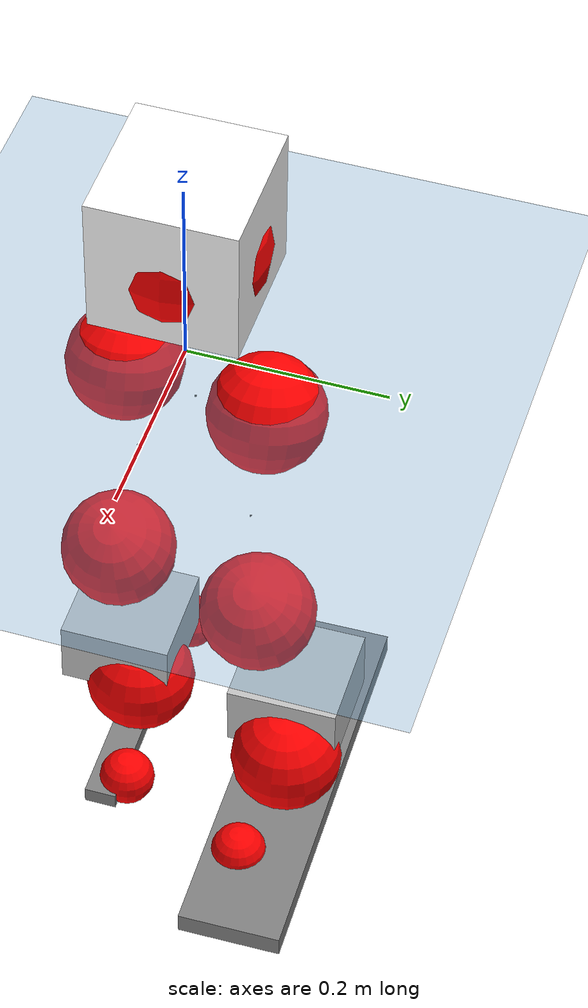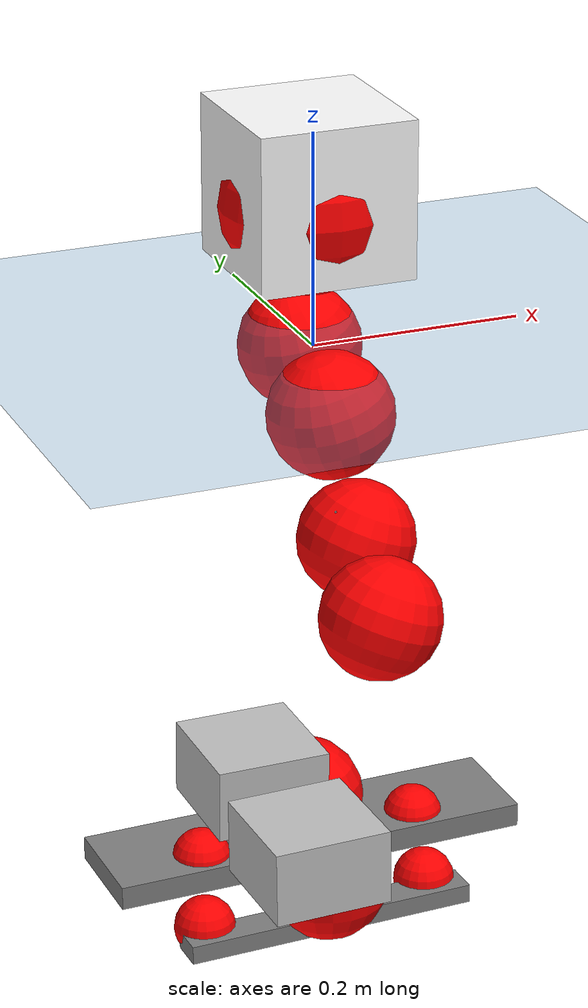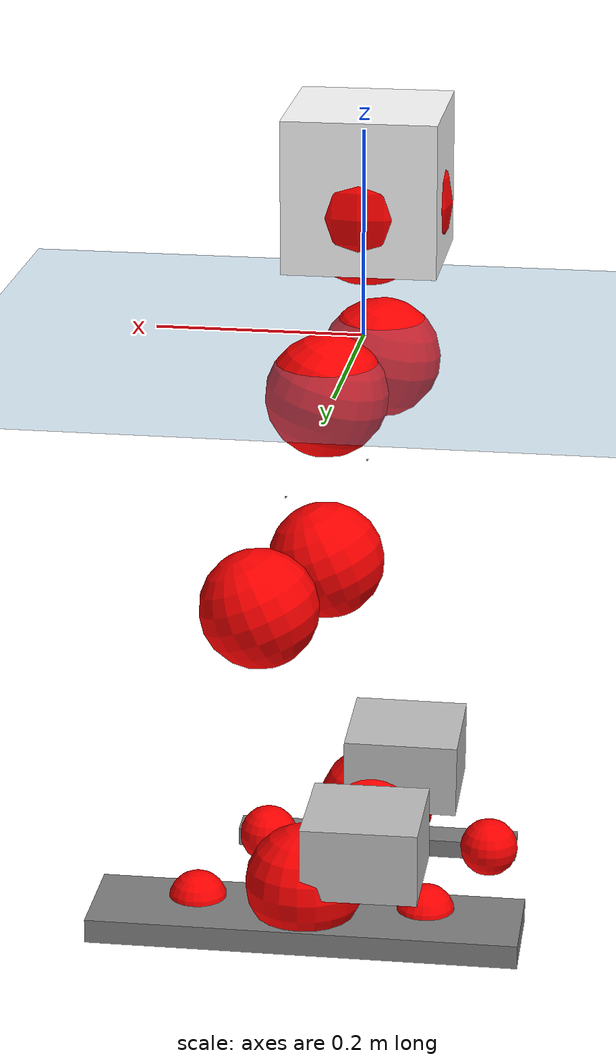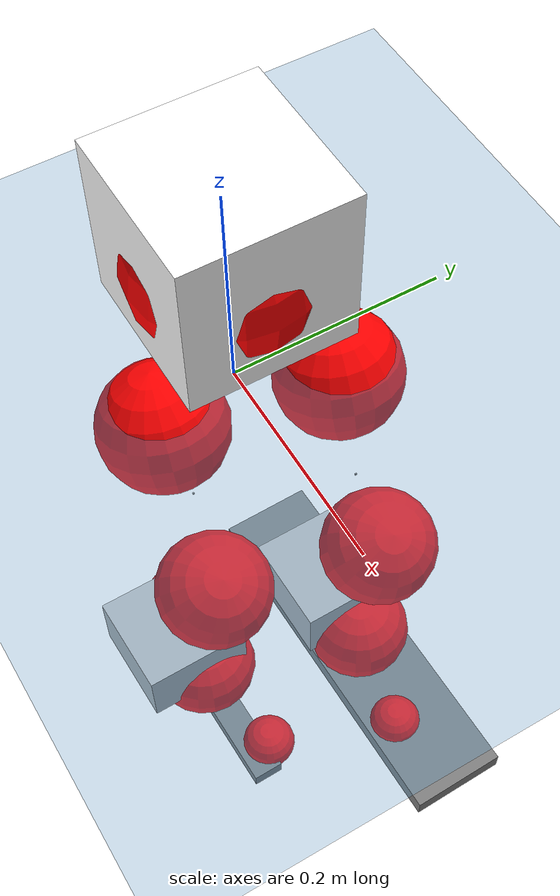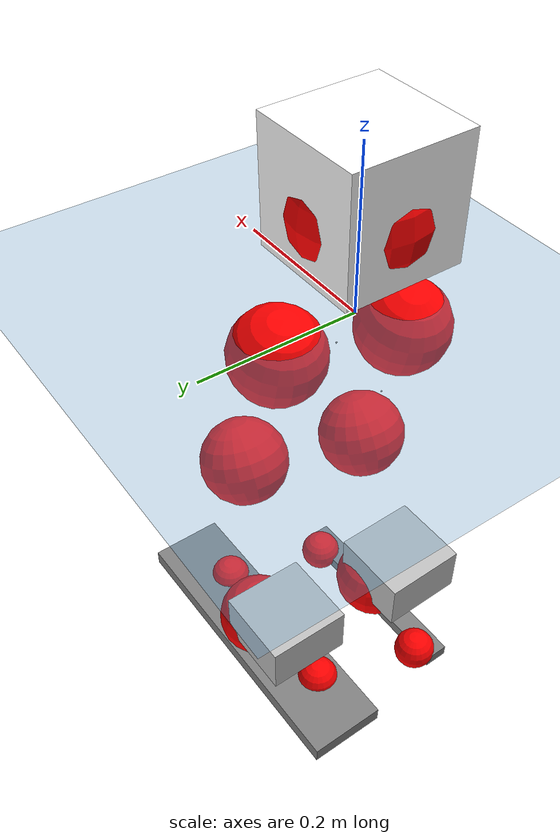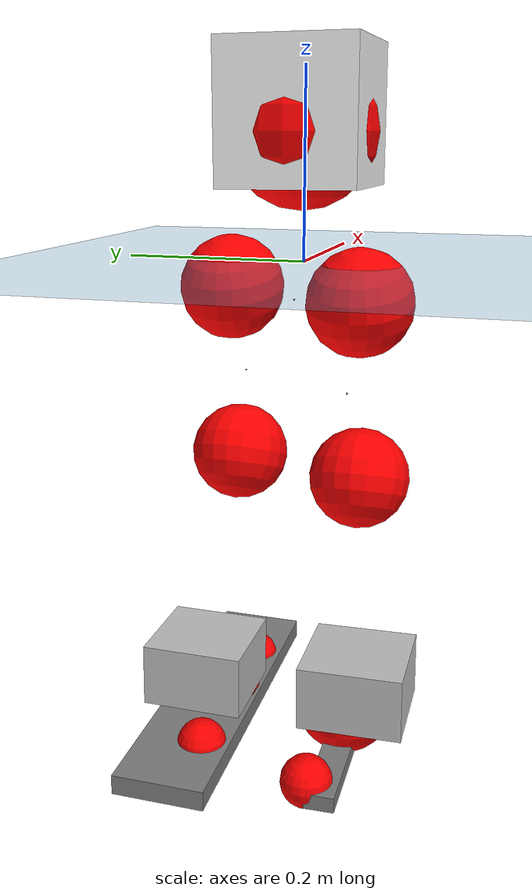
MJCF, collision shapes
<mujoco model="pi_12dof_release_v1">
  <compiler angle="radian" assetdir="assets" balanceinertia="true" inertiafromgeom="false"/>

  <option timestep="0.005" density="1.2" viscosity="2e-05"/>

  <size nkey="1"/>

  <visual>
    <quality shadowsize="8192"/>
    <map shadowclip="0.5"/>
  </visual>

  <default>
    <default class="/">
      <joint armature="0.01" damping="0.01" frictionloss="0.01"/>
      <geom contype="0" conaffinity="0" group="1" solref="-1000 -80"/>
      <site size="0.01 0.005 0.005" group="5"/>
      <general forcelimited="true" biastype="affine" gainprm="20" biasprm="0 -20 -0.5"/>
      <default class="foot">
        <geom size="0.0845 0.036 0.005" type="box" condim="6" group="4" priority="1" friction="0.9 0.2 0.2" solimp="0.015 1 0.005"/>
      </default>
      <default class="reward_collision_sphere">
        <geom group="5" rgba="1 0 0 1"/>
      </default>
    </default>
  </default>

  <asset>
    <texture type="skybox" colorspace="auto" name="//unnamed_texture_0" builtin="gradient" rgb1="0.95 0.95 0.95" rgb2="0.95 0.95 0.95" width="100" height="600"/>
    <texture type="2d" colorspace="auto" name="texplane" builtin="checker" rgb1="0.345 0.575 0.748" rgb2="0.345 0.575 0.748" markrgb="1 1 1" width="512" height="512"/>
    <material name="MatPlane" class="/" texture="texplane" texuniform="true" texrepeat="2 2" specular="0.9"/>
    <mesh name="baselink_1" class="/" file="baselink_1.STL"/>
    <mesh name="r_hip_pitch_link" class="/" file="r_hip_pitch_link.STL"/>
    <mesh name="r_hip_roll_link" class="/" file="r_hip_roll_link.STL"/>
    <mesh name="r_thigh_link" class="/" file="r_thigh_link.STL"/>
    <mesh name="r_calf_link" class="/" file="r_calf_link.STL"/>
    <mesh name="r_ankle_pitch_link" class="/" file="r_ankle_pitch_link.STL"/>
    <mesh name="r_ankle_roll_link" class="/" file="r_ankle_roll_link.STL"/>
    <mesh name="l_hip_pitch_link" class="/" file="l_hip_pitch_link.STL"/>
    <mesh name="l_hip_roll_link" class="/" file="l_hip_roll_link.STL"/>
    <mesh name="l_thigh_link" class="/" file="l_thigh_link.STL"/>
    <mesh name="l_calf_link" class="/" file="l_calf_link.STL"/>
    <mesh name="l_ankle_pitch_link" class="/" file="l_ankle_pitch_link.STL"/>
    <mesh name="l_ankle_roll_link" class="/" file="l_ankle_roll_link.STL"/>
  </asset>

  <worldbody>
    <geom name="floor" class="/" size="100 100 0.125" type="plane" group="0" material="MatPlane"/>
    <light name="toplight_shadow" class="/" pos="0 0 5" dir="0.0990148 0.0990148 -0.990148" type="directional" ambient="0.04 0.04 0.04" diffuse="0.55 0.55 0.55" specular="0.12 0.12 0.12"/>
    <light name="toplight_fill" class="/" pos="0 0 5" dir="0.0990148 0.0990148 -0.990148" type="directional" castshadow="false" ambient="0.04 0.04 0.04" diffuse="0.3 0.3 0.3" specular="0.08 0.08 0.08"/>
    <body name="trunk" pos="-0.00444887 0.00102239 0.0129418" quat="0.999997 -0.00194377 0.00117137 0.000893376">
      <inertial pos="0.0181015 0.01565 0.0597366" quat="0.707944 0.00698018 0.0478665 0.70461" mass="6.54861" diaginertia="0.0889124 0.00646917 0.0535361"/>
      <joint name="//unnamed_joint_0" type="free"/>
      <geom name="//unnamed_geom_1" class="/" type="mesh" density="0" rgba="1 1 1 1" mesh="baselink_1"/>
      <geom name="//unnamed_geom_2" class="/" size="0.0728167 0.0728167 0.0728167" pos="0 0 0.137759" type="box" rgba="1 1 1 1"/>
      <geom name="//unnamed_geom_3" class="reward_collision_sphere" size="0.0800984" pos="0 0 0.120539"/>
      <site name="imu" class="/" pos="0.0890142 0.0269414 -0.0780735" size="0.0145633"/>
      <camera name="track" class="/" pos="0 -1.95625 0" quat="0.707107 0.707107 0 0" mode="trackcom"/>
      <camera name="ego_camera" class="/" pos="0.125167 0 0.309958" quat="-0.5 -0.5 0.5 0.5"/>
      <body name="r_hip_pitch_link" pos="-0.00543049 -0.0138673 -0.0540246" quat="0.991636 0.00192767 -0.129036 0.00196055">
        <inertial pos="-0.0143587 -0.0435591 0.00340144" quat="-0.0711372 0.722516 -0.0247839 0.687238" mass="1.43027" diaginertia="0.00176607 9.40104e-05 0.00117387"/>
        <joint name="r_hip_pitch_joint" class="/" pos="0 0 0" axis="-0.0416877 -0.995855 0.080842" range="-1.74591 1.58233" armature="0.0221281" damping="0.105875" frictionloss="0.0208194"/>
        <geom name="//unnamed_geom_4" class="/" type="mesh" density="0" rgba="0.75294 0.75294 0.75294 1" mesh="r_hip_pitch_link"/>
        <geom name="//unnamed_geom_5" class="/" size="0.000728167 0.000728167 0.000728167" type="box" rgba="0.75294 0.75294 0.75294 1"/>
        <body name="r_hip_roll_link" pos="0.000430505 -0.0513658 0.000394191" quat="0.999998 -0.00189953 0.000807451 -9.69876e-05">
          <inertial pos="-0.0125064 -0.000510383 -0.120874" quat="0.689996 -0.0531741 -0.09869 0.715079" mass="0.971319" diaginertia="0.00494612 0.000238734 0.00198834"/>
          <joint name="r_hip_roll_joint" class="/" pos="0 0 0" axis="-0.996128 -0.0680757 0.0556297" stiffness="0.0334257" range="0.199645 0.320488" armature="0.0219012" damping="0" frictionloss="0.0047421"/>
          <geom name="//unnamed_geom_6" class="/" type="mesh" density="0" rgba="0.75294 0.75294 0.75294 1" mesh="r_hip_roll_link"/>
          <geom name="//unnamed_geom_7" class="/" size="0.000728167 0.000728167 0.000728167" type="box" rgba="0.75294 0.75294 0.75294 1"/>
          <geom name="//unnamed_geom_8" class="reward_collision_sphere" size="0.0582534"/>
          <body name="r_thigh_link" pos="-0.0148983 0.0148762 -0.101459" quat="0.999974 -0.00286209 -0.000437807 0.00662713">
            <inertial pos="0.0070035 0.001212 -0.0747102" quat="0.731739 0.680643 0.00216856 -0.0357676" mass="0.412946" diaginertia="0.00184268 8.4035e-05 0.00108204"/>
            <joint name="r_thigh_joint" class="/" pos="0 0 0" axis="-0.0609475 0.00642648 -0.99812" range="-0.475206 0.422136" armature="0.0179616" damping="0.000666881" frictionloss="0.0103342"/>
            <geom name="//unnamed_geom_9" class="/" type="mesh" density="0" rgba="0.75294 0.75294 0.75294 1" mesh="r_thigh_link"/>
            <geom name="//unnamed_geom_10" class="/" size="0.000728167 0.000728167 0.000728167" type="box" rgba="0.75294 0.75294 0.75294 1"/>
            <body name="r_calf_link" pos="0.0123266 -0.00748927 -0.116613" quat="0.947786 0.000834467 0.318906 -0.000738845">
              <inertial pos="-0.0159176 0.00365273 -0.12423" quat="0.999972 0.00361304 0.00557324 -0.0034918" mass="2.32792" diaginertia="0.043495 0.00228412 0.00222888"/>
              <joint name="r_calf_joint" class="/" pos="0 0 0" axis="-0.00300689 -0.998022 0.0627912" stiffness="0.00673068" range="-1.5696 0.425563" armature="0.0237909" damping="0" frictionloss="0.0221789"/>
              <geom name="//unnamed_geom_11" class="/" type="mesh" density="0" rgba="0.75294 0.75294 0.75294 1" mesh="r_calf_link"/>
              <geom name="//unnamed_geom_12" class="/" size="0.000728167 0.000728167 0.000728167" type="box" rgba="0.75294 0.75294 0.75294 1"/>
              <geom name="//unnamed_geom_13" class="reward_collision_sphere" size="0.0582534"/>
              <body name="r_ankle_pitch_link" pos="0.00983053 -0.0165101 -0.230501" quat="0.979867 -0.000935929 -0.199629 0.00278785">
                <inertial pos="0.00678162 -0.00217978 0.00436347" quat="0.0369663 0.666323 0.0380624 0.743773" mass="0.770754" diaginertia="0.00440884 0.000197543 0.00185844"/>
                <joint name="r_ankle_pitch_joint" class="/" pos="0 0 0" axis="0.0263659 -0.999376 0.0235238" stiffness="0.0656746" range="-1.15579 0.375788" armature="0.0194346" damping="0.0932141" frictionloss="0.0138643"/>
                <geom name="//unnamed_geom_14" class="/" type="mesh" density="0" rgba="0.75294 0.75294 0.75294 1" mesh="r_ankle_pitch_link"/>
                <geom name="//unnamed_geom_15" class="/" size="0.0567971 0.0582534 0.0364084" type="box" rgba="0.75294 0.75294 0.75294 1"/>
                <body name="r_ankle_roll_link" pos="0.10998 0.0192339 -0.00934155" quat="0.999998 0.00206335 0.000199786 0.000181467">
                  <inertial pos="-0.0380506 0.00387294 -0.0413732" quat="0.551368 0.474494 0.443119 0.523922" mass="1.73101" diaginertia="0.018025 0.00109951 0.00412895"/>
                  <joint name="r_ankle_roll_joint" class="/" pos="0 0 0" axis="-0.999866 0.0135723 -0.00911507" range="0.100257 -0.0329526" armature="0.00884692" damping="0.0951793" frictionloss="0.00346518"/>
                  <geom name="//unnamed_geom_16" class="/" type="mesh" density="0" rgba="0.75294 0.75294 0.75294 1" mesh="r_ankle_roll_link"/>
                  <geom name="//unnamed_geom_17" class="/" type="mesh" rgba="0.75294 0.75294 0.75294 1" mesh="r_ankle_roll_link"/>
                  <geom name="right_foot" class="foot" size="0.141629 0.0166319 0.00894919" pos="-0.0851134 0 -0.0757676"/>
                  <geom name="//unnamed_geom_19" class="reward_collision_sphere" size="0.0582534" pos="-0.0834445 0 -0.0344398"/>
                  <geom name="//unnamed_geom_20" class="reward_collision_sphere" size="0.0291267" pos="0.0250334 0.0195625 -0.0688796"/>
                  <geom name="//unnamed_geom_21" class="reward_collision_sphere" size="0.0291267" pos="-0.200267 0.0195625 -0.0688796"/>
                  <site name="right_foot" class="foot" pos="-0.0851134 0 -0.0757676" size="0.0145633"/>
                </body>
              </body>
            </body>
          </body>
        </body>
      </body>
      <body name="l_hip_pitch_link" pos="0.0174389 0.0130733 -0.0564103" quat="0.99191 0.00201743 -0.126905 0.00241175">
        <inertial pos="-0.00855462 0.0371048 -0.00411338" quat="-0.0961334 0.712438 0.0315775 0.694401" mass="1.1863" diaginertia="0.00218672 8.76336e-05 0.00216612"/>
        <joint name="l_hip_pitch_joint" class="/" pos="0 0 0" axis="-0.0654808 0.997656 0.0198839" stiffness="0.038957" range="-0.928797 1.63512" armature="0.00215953" damping="0.0869952" frictionloss="0.019022"/>
        <geom name="//unnamed_geom_22" class="/" type="mesh" density="0" rgba="0.75294 0.75294 0.75294 1" mesh="l_hip_pitch_link"/>
        <geom name="//unnamed_geom_23" class="/" size="0.000728167 0.000728167 0.000728167" type="box" rgba="0.75294 0.75294 0.75294 1"/>
        <body name="l_hip_roll_link" pos="0.0122589 0.0740592 0.00722789" quat="1 -7.28083e-07 -3.91134e-05 -7.14112e-05">
          <inertial pos="-0.00322607 -0.0142462 -0.0990268" quat="0.694617 -0.0863907 -0.0954265 0.70777" mass="1.21506" diaginertia="0.0043447 0.000285528 0.00175395"/>
          <joint name="l_hip_roll_joint" class="/" pos="0 0 0" axis="-0.996173 0.0656629 0.0576842" range="-0.852127 -0.130523" armature="0.0105708" damping="0.0453207" frictionloss="0.0259259"/>
          <geom name="//unnamed_geom_24" class="/" type="mesh" density="0" rgba="0.75294 0.75294 0.75294 1" mesh="l_hip_roll_link"/>
          <geom name="//unnamed_geom_25" class="/" size="0.000728167 0.000728167 0.000728167" type="box" rgba="0.75294 0.75294 0.75294 1"/>
          <geom name="//unnamed_geom_26" class="reward_collision_sphere" size="0.0582534"/>
          <body name="l_thigh_link" pos="0.012389 -0.00332856 -0.110219" quat="0.999989 -0.00278608 0.00193839 0.00317559">
            <inertial pos="0.000494263 -0.000119702 -0.0789975" quat="0.605147 0.795887 0.00606881 0.0180188" mass="0.343553" diaginertia="0.00150367 7.76057e-05 0.00104923"/>
            <joint name="l_thigh_joint" class="/" pos="0 0 0" axis="-0.0449227 0.00672348 -0.998968" stiffness="0.0143755" range="-0.367077 0.0562327" armature="0.00727281" damping="0.0791" frictionloss="0.00572208"/>
            <geom name="//unnamed_geom_27" class="/" type="mesh" density="0" rgba="0.75294 0.75294 0.75294 1" mesh="l_thigh_link"/>
            <geom name="//unnamed_geom_28" class="/" size="0.000728167 0.000728167 0.000728167" type="box" rgba="0.75294 0.75294 0.75294 1"/>
            <body name="l_calf_link" pos="-0.00361422 0.0161939 -0.11103" quat="0.947403 0.0066198 0.319968 0.00213548">
              <inertial pos="0.0168395 0.00633542 -0.135304" quat="0.999383 0.0153519 0.0168139 -0.0267367" mass="2.80992" diaginertia="0.0504273 0.00359048 0.00363633"/>
              <joint name="l_calf_joint" class="/" pos="0 0 0" axis="-0.000945054 0.999022 -0.0441971" stiffness="0.0414495" range="-0.82939 2.0263" armature="0.0251687" damping="0.0188336" frictionloss="0.0260224"/>
              <geom name="//unnamed_geom_29" class="/" type="mesh" density="0" rgba="0.75294 0.75294 0.75294 1" mesh="l_calf_link"/>
              <geom name="//unnamed_geom_30" class="/" size="0.000728167 0.000728167 0.000728167" type="box" rgba="0.75294 0.75294 0.75294 1"/>
              <geom name="//unnamed_geom_31" class="reward_collision_sphere" size="0.0582534"/>
              <body name="l_ankle_pitch_link" pos="-0.00382371 0.0103688 -0.257418" quat="0.980267 0.00180884 -0.19767 -0.000578566">
                <inertial pos="-0.00533197 0.00599574 -0.00609532" quat="-0.000280119 0.708522 0.00591871 0.705664" mass="0.812981" diaginertia="0.00582348 0.000234396 0.00204347"/>
                <joint name="l_ankle_pitch_joint" class="/" pos="0 0 0" axis="0.00795658 0.99753 0.069789" stiffness="0.0130511" range="-0.546444 1.3942" armature="0.0139944" damping="0.0845046" frictionloss="0.000863423"/>
                <geom name="//unnamed_geom_32" class="/" type="mesh" density="0" rgba="0.75294 0.75294 0.75294 1" mesh="l_ankle_pitch_link"/>
                <geom name="//unnamed_geom_33" class="/" size="0.0567971 0.0582534 0.0364084" type="box" rgba="0.75294 0.75294 0.75294 1"/>
                <body name="l_ankle_roll_link" pos="0.141587 0.00672505 -0.00591204" quat="0.999986 0.00115873 -0.00435853 0.00261866">
                  <inertial pos="-0.0305695 -0.000386093 -0.0287209" quat="0.559485 0.468409 0.464234 0.502053" mass="1.42285" diaginertia="0.0158372 0.000714003 0.00389502"/>
                  <joint name="l_ankle_roll_joint" class="/" pos="0 0 0" axis="-0.99981 -0.00948773 -0.0170508" range="-0.134194 0.144952" armature="0.0205379" damping="0" frictionloss="0.0270635"/>
                  <geom name="//unnamed_geom_34" class="/" type="mesh" density="0" rgba="0.75294 0.75294 0.75294 1" mesh="l_ankle_roll_link"/>
                  <geom name="//unnamed_geom_35" class="/" type="mesh" rgba="0.75294 0.75294 0.75294 1" mesh="l_ankle_roll_link"/>
                  <geom name="left_foot" class="foot" size="0.210448 0.0534969 0.0117383" pos="-0.0851134 0 -0.0757676"/>
                  <geom name="//unnamed_geom_37" class="reward_collision_sphere" size="0.0582534" pos="-0.0834445 0 -0.0344398"/>
                  <geom name="//unnamed_geom_38" class="reward_collision_sphere" size="0.0291267" pos="0.0250334 -0.0195625 -0.0688796"/>
                  <geom name="//unnamed_geom_39" class="reward_collision_sphere" size="0.0291267" pos="-0.200267 -0.0195625 -0.0688796"/>
                  <site name="left_foot" class="foot" pos="-0.0851134 0 -0.0757676" size="0.0145633"/>
                </body>
              </body>
            </body>
          </body>
        </body>
      </body>
    </body>
  </worldbody>

  <contact>
    <pair class="/" geom1="floor" geom2="right_foot" name="//unnamed_contact_1"/>
    <pair class="/" geom1="floor" geom2="left_foot" name="//unnamed_contact_0"/>
  </contact>

  <actuator>
    <general name="r_hip_pitch_joint" class="/" joint="r_hip_pitch_joint" forcerange="-20.6083 20.6083" gainprm="33.2526" biasprm="0 -33.2526 -0.446651"/>
    <general name="r_hip_roll_joint" class="/" joint="r_hip_roll_joint" forcerange="-47.6346 47.6346" gainprm="33.2526" biasprm="0 -33.2526 -0.446651"/>
    <general name="r_thigh_joint" class="/" joint="r_thigh_joint" forcerange="-14.9484 14.9484" gainprm="33.2526" biasprm="0 -33.2526 -0.446651"/>
    <general name="r_calf_joint" class="/" joint="r_calf_joint" forcerange="-33.4602 33.4602" gainprm="33.2526" biasprm="0 -33.2526 -0.446651"/>
    <general name="r_ankle_pitch_joint" class="/" joint="r_ankle_pitch_joint" forcerange="-47.3176 47.3176" gainprm="33.2526" biasprm="0 -33.2526 -0.446651"/>
    <general name="r_ankle_roll_joint" class="/" joint="r_ankle_roll_joint" forcerange="-31.1984 31.1984" gainprm="33.2526" biasprm="0 -33.2526 -0.446651"/>
    <general name="l_hip_pitch_joint" class="/" joint="l_hip_pitch_joint" forcerange="-37.2742 37.2742" gainprm="33.2526" biasprm="0 -33.2526 -0.446651"/>
    <general name="l_hip_roll_joint" class="/" joint="l_hip_roll_joint" forcerange="-43.6746 43.6746" gainprm="33.2526" biasprm="0 -33.2526 -0.446651"/>
    <general name="l_thigh_joint" class="/" joint="l_thigh_joint" forcerange="-38.9303 38.9303" gainprm="33.2526" biasprm="0 -33.2526 -0.446651"/>
    <general name="l_calf_joint" class="/" joint="l_calf_joint" forcerange="-44.3412 44.3412" gainprm="33.2526" biasprm="0 -33.2526 -0.446651"/>
    <general name="l_ankle_pitch_joint" class="/" joint="l_ankle_pitch_joint" forcerange="-19.0615 19.0615" gainprm="33.2526" biasprm="0 -33.2526 -0.446651"/>
    <general name="l_ankle_roll_joint" class="/" joint="l_ankle_roll_joint" forcerange="-48.2554 48.2554" gainprm="33.2526" biasprm="0 -33.2526 -0.446651"/>
  </actuator>

  <sensor>
    <gyro site="imu" name="imu_angular_velocity"/>
    <velocimeter site="imu" name="imu_linear_velocity"/>
    <framelinvel objtype="site" objname="left_foot" name="left_foot_global_linear_velocity"/>
    <framelinvel objtype="site" objname="right_foot" name="right_foot_global_linear_velocity"/>
  </sensor>

  <keyframe>
    <key name="home" qpos="0 0 0.291 1 0 0 0 0.4 0 0 -0.8 0.4 0 -0.4 0 0 0.8 -0.4 0"/>
  </keyframe>
</mujoco>
